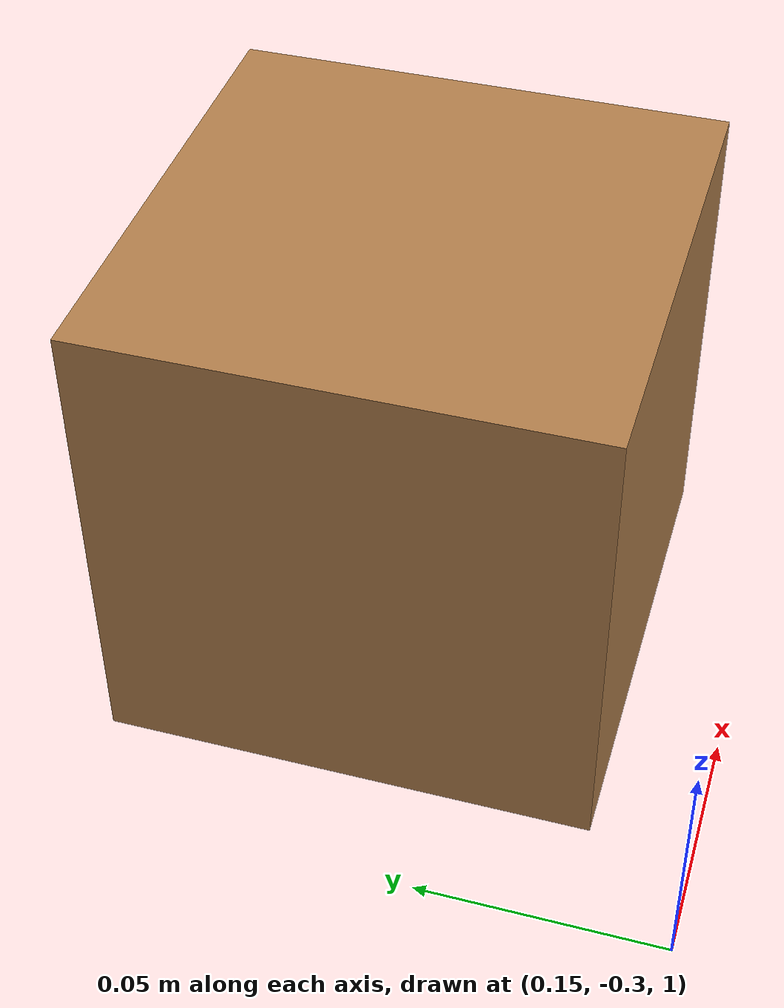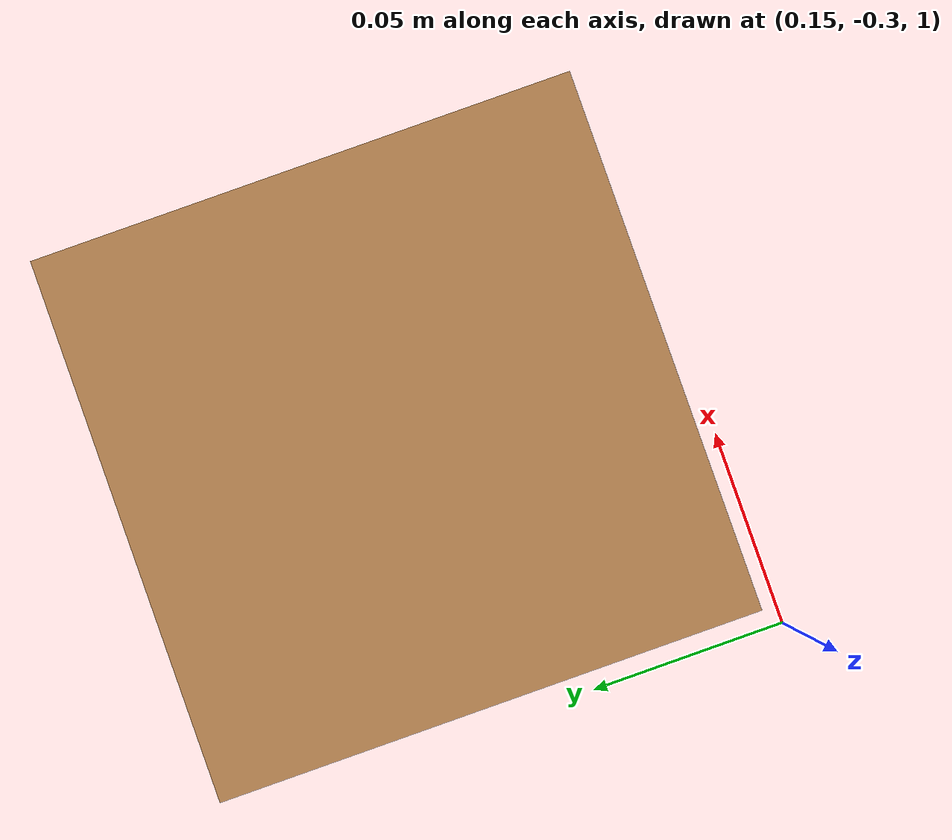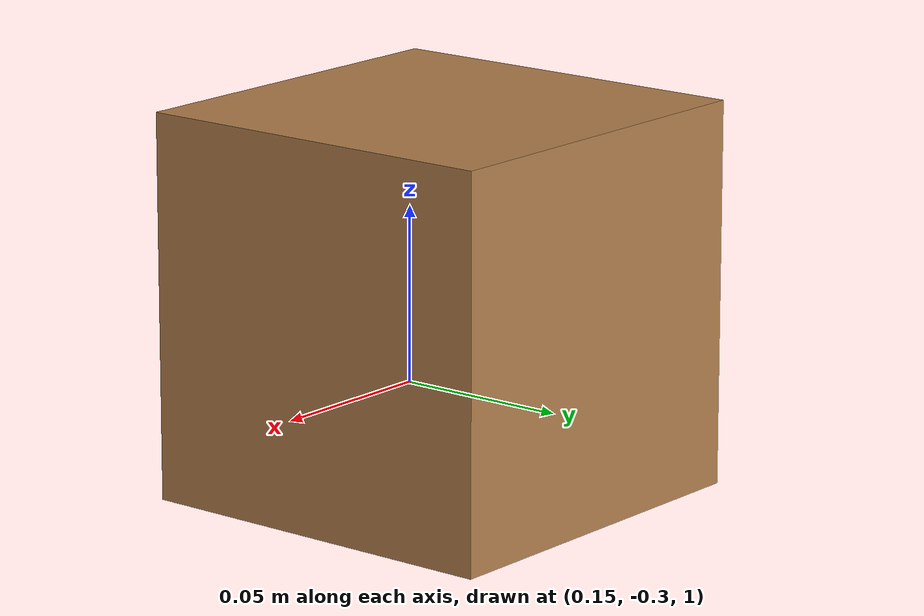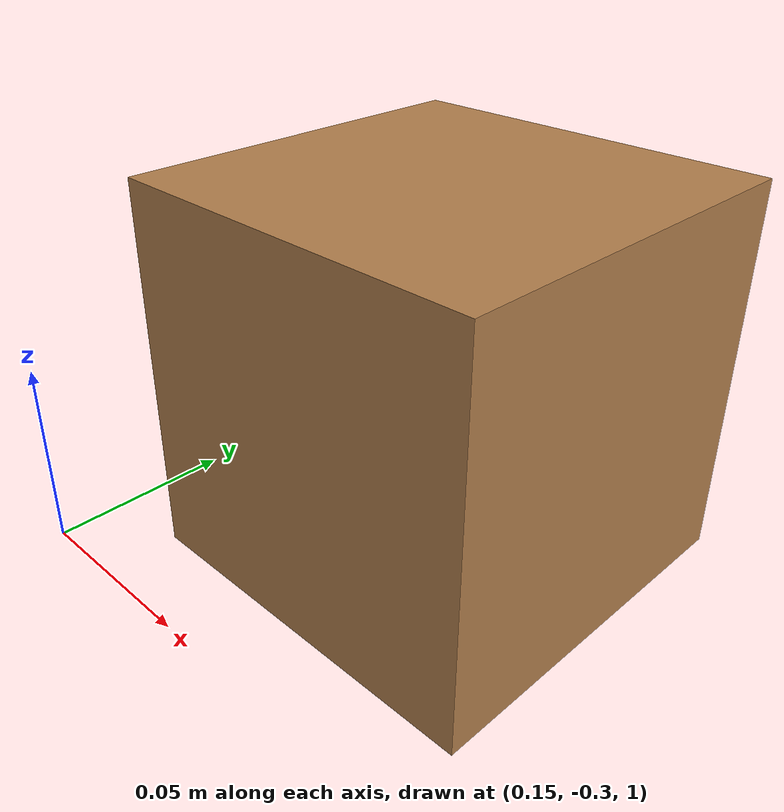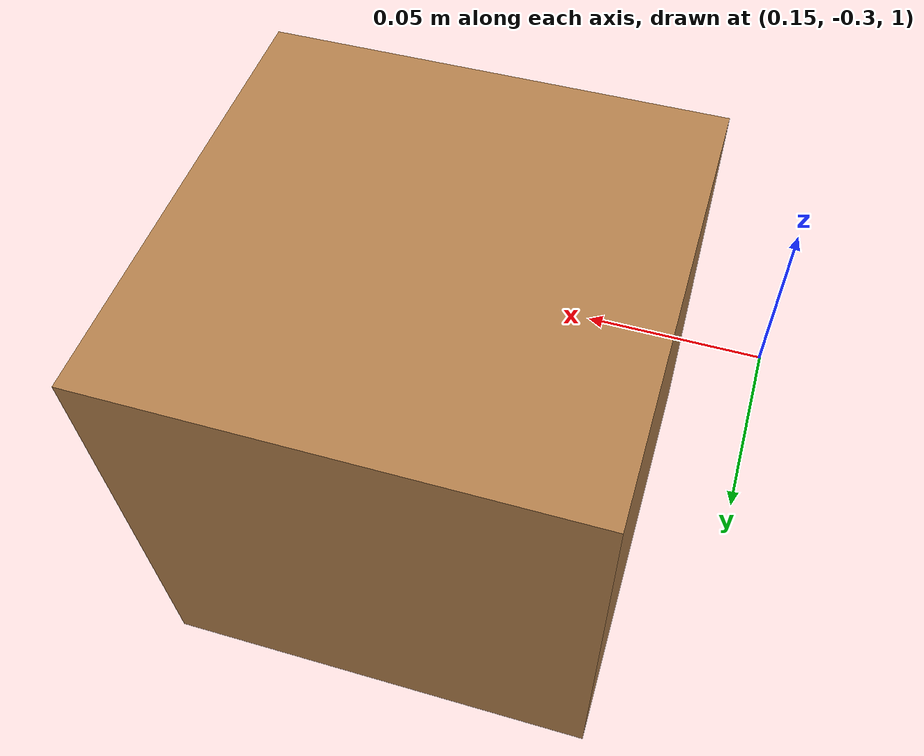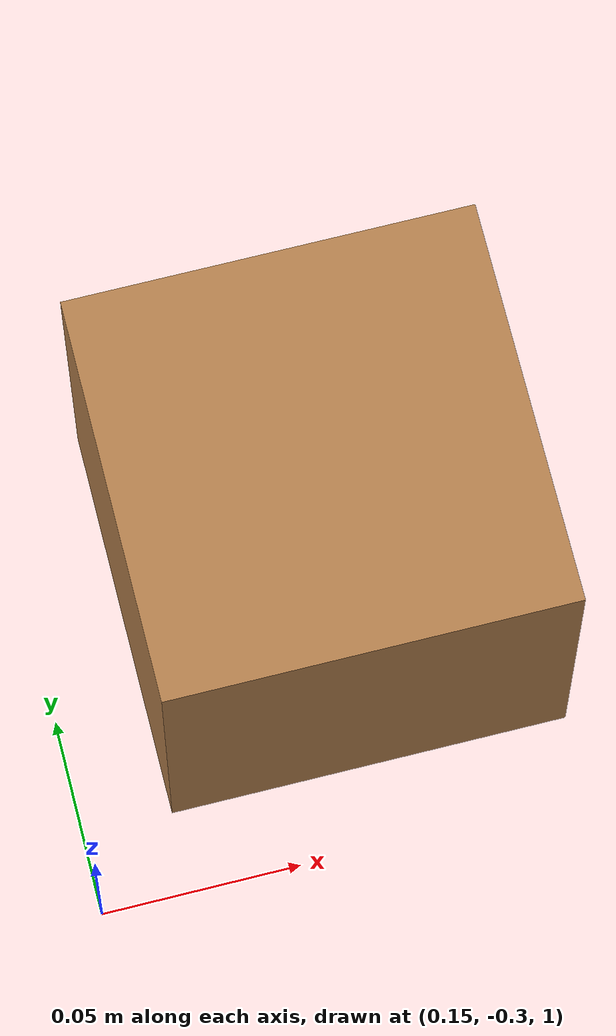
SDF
<sdf version="1.6">
 <world name="default">
  <model name="ground_plane">
   <static>1</static>
   <link name="link">
    <collision name="collision">
     <geometry><plane><normal>0 0 1</normal><size>100 100</size></plane></geometry>
     <surface><friction><ode><mu>100</mu><mu2>50</mu2></ode></friction></surface>
    </collision>
    <visual name="visual">
     <cast_shadows>0</cast_shadows>
     <geometry><plane><normal>0 0 1</normal><size>100 100</size></plane></geometry>
     <material>
      <script><uri>file://media/materials/scripts/gazebo.material</uri><name>Gazebo/Grey</name></script>
     </material>
    </visual>
   </link>
  </model>
  <model name="wood_cube_10cm">
   <link name="link">
    <pose>0 0 0.05 0 -0 0</pose>
    <inertial>
     <mass>0.5167</mass>
     <inertia>
      <ixx>0.000861167</ixx>
      <ixy>0</ixy>
      <ixz>0</ixz>
      <iyy>0.000861167</iyy>
      <iyz>0</iyz>
      <izz>0.000861167</izz>
     </inertia>
    </inertial>
    <collision name="collision">
     <geometry><box><size>0.1 0.1 0.1</size></box></geometry>
     <surface>
      <contact>
       <poissons_ratio>0.347</poissons_ratio>
       <elastic_modulus>8.8e+09</elastic_modulus>
       <ode><kp>100000</kp><kd>100</kd><max_vel>100</max_vel><min_depth>0.001</min_depth></ode>
      </contact>
      <friction>
       <torsional>
        <coefficient>1</coefficient>
        <use_patch_radius>0</use_patch_radius>
        <surface_radius>0.01</surface_radius>
       </torsional>
      </friction>
     </surface>
    </collision>
    <visual name="visual">
     <geometry><box><size>0.1 0.1 0.1</size></box></geometry>
     <material>
      <script><uri>file://media/materials/scripts/gazebo.material</uri><name>Gazebo/Wood</name></script>
     </material>
    </visual>
   </link>
   <pose>0.222488 -0.229429 0.999987 -1e-06 0 0</pose>
  </model>
  <light name="sun" type="directional">
   <pose>0 0 10 0 -0 0</pose>
   <diffuse>0.8 0.8 0.8 1</diffuse>
   <specular>0.1 0.1 0.1 1</specular>
   <attenuation>
    <range>1000</range>
    <constant>0.9</constant>
    <linear>0.01</linear>
    <quadratic>0.001</quadratic>
   </attenuation>
   <direction>-0.5 0.5 -1</direction>
  </light>
  <gravity>0 0 -9.8</gravity>
  <magnetic_field>6e-06 2.3e-05 -4.2e-05</magnetic_field>
  <atmosphere type="adiabatic"/>
  <physics name="default_physics" default="0" type="ode"/>
  <scene><ambient>0.4 0.4 0.4 1</ambient><background>0.7 0.7 0.7 1</background><shadows>1</shadows></scene>
  <spherical_coordinates>
   <surface_model>EARTH_WGS84</surface_model>
   <latitude_deg>0</latitude_deg>
   <longitude_deg>0</longitude_deg>
   <elevation>0</elevation>
   <heading_deg>0</heading_deg>
  </spherical_coordinates>
 </world>
</sdf>
